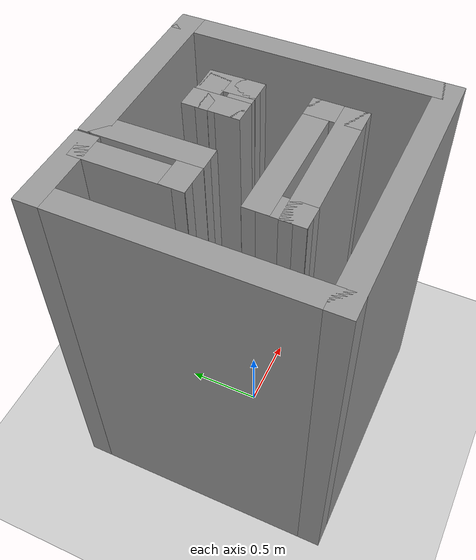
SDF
<?xml version="1.0" ?>

<sdf version="1.5">
  <world name="default">
    <!-- A global light source -->
    <include>
      <uri>model://sun</uri>
    </include>

    <!-- A ground plane -->
    <include>
      <uri>model://ground_plane</uri>
    </include>

    <!-- Our custom model -->
    <include>
      <uri>model://campus_1</uri>
    </include>
  </world>
</sdf>

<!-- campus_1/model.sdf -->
<sdf version='1.6'>
  <model name='campus_1'>
    <pose frame=''>0.012444 0.006742 0 0 -0 0</pose>
    <link name='Wall_11'>
      <collision name='Wall_11_Collision'>
        <geometry>
          <box>
            <size>0.672566 0.15 2.5</size>
          </box>
        </geometry>
        <pose frame=''>0 0 1.25 0 -0 0</pose>
      </collision>
      <visual name='Wall_11_Visual'>
        <pose frame=''>0 0 1.25 0 -0 0</pose>
        <geometry>
          <box>
            <size>0.672566 0.15 2.5</size>
          </box>
        </geometry>
        <material>
          <script>
            <uri>file://media/materials/scripts/gazebo.material</uri>
            <name>Gazebo/Grey</name>
          </script>
          <ambient>1 1 1 1</ambient>
        </material>
        <meta>
          <layer>0</layer>
        </meta>
      </visual>
      <pose frame=''>-0.420109 0.474542 0 0 -0 -1.5636</pose>
    </link>
    <link name='Wall_12'>
      <collision name='Wall_12_Collision'>
        <geometry>
          <box>
            <size>0.341765 0.15 2.5</size>
          </box>
        </geometry>
        <pose frame=''>0 0 1.25 0 -0 0</pose>
      </collision>
      <visual name='Wall_12_Visual'>
        <pose frame=''>0 0 1.25 0 -0 0</pose>
        <geometry>
          <box>
            <size>0.341765 0.15 2.5</size>
          </box>
        </geometry>
        <material>
          <script>
            <uri>file://media/materials/scripts/gazebo.material</uri>
            <name>Gazebo/Grey</name>
          </script>
          <ambient>1 1 1 1</ambient>
        </material>
        <meta>
          <layer>0</layer>
        </meta>
      </visual>
      <pose frame=''>-0.322365 0.211386 0 0 -0 -0.019605</pose>
    </link>
    <link name='Wall_13'>
      <collision name='Wall_13_Collision'>
        <geometry>
          <box>
            <size>0.732702 0.15 2.5</size>
          </box>
        </geometry>
        <pose frame=''>0 0 1.25 0 -0 0</pose>
      </collision>
      <visual name='Wall_13_Visual'>
        <pose frame=''>0 0 1.25 0 -0 0</pose>
        <geometry>
          <box>
            <size>0.732702 0.15 2.5</size>
          </box>
        </geometry>
        <material>
          <script>
            <uri>file://media/materials/scripts/gazebo.material</uri>
            <name>Gazebo/Grey</name>
          </script>
          <ambient>1 1 1 1</ambient>
        </material>
        <meta>
          <layer>0</layer>
        </meta>
      </visual>
      <pose frame=''>-0.228381 0.500857 0 0 -0 1.57725</pose>
    </link>
    <link name='Wall_14'>
      <collision name='Wall_14_Collision'>
        <geometry>
          <box>
            <size>1.18009 0.15 2.5</size>
          </box>
        </geometry>
        <pose frame=''>0 0 1.25 0 -0 0</pose>
      </collision>
      <visual name='Wall_14_Visual'>
        <pose frame=''>0 0 1.25 0 -0 0</pose>
        <geometry>
          <box>
            <size>1.18009 0.15 2.5</size>
          </box>
        </geometry>
        <material>
          <script>
            <uri>file://media/materials/scripts/gazebo.material</uri>
            <name>Gazebo/Grey</name>
          </script>
          <ambient>1 1 1 1</ambient>
        </material>
        <meta>
          <layer>0</layer>
        </meta>
      </visual>
      <pose frame=''>0.284773 0.795968 0 0 -0 0.007299</pose>
    </link>
    <link name='Wall_15'>
      <collision name='Wall_15_Collision'>
        <geometry>
          <box>
            <size>1.75 0.15 2.5</size>
          </box>
        </geometry>
        <pose frame=''>0 0 1.25 0 -0 0</pose>
      </collision>
      <visual name='Wall_15_Visual'>
        <pose frame=''>0 0 1.25 0 -0 0</pose>
        <geometry>
          <box>
            <size>1.75 0.15 2.5</size>
          </box>
        </geometry>
        <material>
          <script>
            <uri>file://media/materials/scripts/gazebo.material</uri>
            <name>Gazebo/Grey</name>
          </script>
          <ambient>1 1 1 1</ambient>
        </material>
        <meta>
          <layer>0</layer>
        </meta>
      </visual>
      <pose frame=''>0.799807 -0.000273 0 0 -0 -1.5708</pose>
    </link>
    <link name='Wall_16'>
      <collision name='Wall_16_Collision'>
        <geometry>
          <box>
            <size>1.75 0.15 2.5</size>
          </box>
        </geometry>
        <pose frame=''>0 0 1.25 0 -0 0</pose>
      </collision>
      <visual name='Wall_16_Visual'>
        <pose frame=''>0 0 1.25 0 -0 0</pose>
        <geometry>
          <box>
            <size>1.75 0.15 2.5</size>
          </box>
        </geometry>
        <material>
          <script>
            <uri>file://media/materials/scripts/gazebo.material</uri>
            <name>Gazebo/Grey</name>
          </script>
          <ambient>1 1 1 1</ambient>
        </material>
        <meta>
          <layer>0</layer>
        </meta>
      </visual>
      <pose frame=''>-0.000193 -0.800273 0 0 -0 3.14159</pose>
    </link>
    <link name='Wall_17'>
      <collision name='Wall_17_Collision'>
        <geometry>
          <box>
            <size>1.75 0.15 2.5</size>
          </box>
        </geometry>
        <pose frame=''>0 0 1.25 0 -0 0</pose>
      </collision>
      <visual name='Wall_17_Visual'>
        <pose frame=''>0 0 1.25 0 -0 0</pose>
        <geometry>
          <box>
            <size>1.75 0.15 2.5</size>
          </box>
        </geometry>
        <material>
          <script>
            <uri>file://media/materials/scripts/gazebo.material</uri>
            <name>Gazebo/Grey</name>
          </script>
          <ambient>1 1 1 1</ambient>
        </material>
        <meta>
          <layer>0</layer>
        </meta>
      </visual>
      <pose frame=''>-0.800193 -0.000273 0 0 -0 1.5708</pose>
    </link>
    <link name='Wall_18'>
      <collision name='Wall_18_Collision'>
        <geometry>
          <box>
            <size>0.561383 0.15 2.5</size>
          </box>
        </geometry>
        <pose frame=''>0 0 1.25 0 -0 0</pose>
      </collision>
      <visual name='Wall_18_Visual'>
        <pose frame=''>0 0 1.25 0 -0 0</pose>
        <geometry>
          <box>
            <size>0.561383 0.15 2.5</size>
          </box>
        </geometry>
        <material>
          <script>
            <uri>file://media/materials/scripts/gazebo.material</uri>
            <name>Gazebo/Grey</name>
          </script>
          <ambient>1 1 1 1</ambient>
        </material>
        <meta>
          <layer>0</layer>
        </meta>
      </visual>
      <pose frame=''>-0.594608 0.799872 0 0 -0 0.000704</pose>
    </link>
    <link name='Wall_20'>
      <collision name='Wall_20_Collision'>
        <geometry>
          <box>
            <size>0.348871 0.15 2.5</size>
          </box>
        </geometry>
        <pose frame=''>0 0 1.25 0 -0 0</pose>
      </collision>
      <visual name='Wall_20_Visual'>
        <pose frame=''>0 0 1.25 0 -0 0</pose>
        <geometry>
          <box>
            <size>0.348871 0.15 2.5</size>
          </box>
        </geometry>
        <material>
          <script>
            <uri>file://media/materials/scripts/gazebo.material</uri>
            <name>Gazebo/Grey</name>
          </script>
          <ambient>1 1 1 1</ambient>
        </material>
        <meta>
          <layer>0</layer>
        </meta>
      </visual>
      <pose frame=''>0.185972 0.307163 0 0 -0 -1.5708</pose>
    </link>
    <link name='Wall_21'>
      <collision name='Wall_21_Collision'>
        <geometry>
          <box>
            <size>0.335951 0.15 2.5</size>
          </box>
        </geometry>
        <pose frame=''>0 0 1.25 0 -0 0</pose>
      </collision>
      <visual name='Wall_21_Visual'>
        <pose frame=''>0 0 1.25 0 -0 0</pose>
        <geometry>
          <box>
            <size>0.335951 0.15 2.5</size>
          </box>
        </geometry>
        <material>
          <script>
            <uri>file://media/materials/scripts/gazebo.material</uri>
            <name>Gazebo/Grey</name>
          </script>
          <ambient>1 1 1 1</ambient>
        </material>
        <meta>
          <layer>0</layer>
        </meta>
      </visual>
      <pose frame=''>0.278923 0.207728 0 0 -0 0</pose>
    </link>
    <link name='Wall_22'>
      <collision name='Wall_22_Collision'>
        <geometry>
          <box>
            <size>0.335951 0.15 2.5</size>
          </box>
        </geometry>
        <pose frame=''>0 0 1.25 0 -0 0</pose>
      </collision>
      <visual name='Wall_22_Visual'>
        <pose frame=''>0 0 1.25 0 -0 0</pose>
        <geometry>
          <box>
            <size>0.335951 0.15 2.5</size>
          </box>
        </geometry>
        <material>
          <script>
            <uri>file://media/materials/scripts/gazebo.material</uri>
            <name>Gazebo/Grey</name>
          </script>
          <ambient>1 1 1 1</ambient>
        </material>
        <meta>
          <layer>0</layer>
        </meta>
      </visual>
      <pose frame=''>0.369711 0.300678 0 0 -0 1.59405</pose>
    </link>
    <link name='Wall_23'>
      <collision name='Wall_23_Collision'>
        <geometry>
          <box>
            <size>0.331629 0.15 2.5</size>
          </box>
        </geometry>
        <pose frame=''>0 0 1.25 0 -0 0</pose>
      </collision>
      <visual name='Wall_23_Visual'>
        <pose frame=''>0 0 1.25 0 -0 0</pose>
        <geometry>
          <box>
            <size>0.331629 0.15 2.5</size>
          </box>
        </geometry>
        <material>
          <script>
            <uri>file://media/materials/scripts/gazebo.material</uri>
            <name>Gazebo/Grey</name>
          </script>
          <ambient>1 1 1 1</ambient>
        </material>
        <meta>
          <layer>0</layer>
        </meta>
      </visual>
      <pose frame=''>0.276761 0.39579 0 0 -0 3.11779</pose>
    </link>
    <link name='Wall_6'>
      <collision name='Wall_6_Collision'>
        <geometry>
          <box>
            <size>0.917593 0.15 2.5</size>
          </box>
        </geometry>
        <pose frame=''>0 0 1.25 0 -0 0</pose>
      </collision>
      <visual name='Wall_6_Visual'>
        <pose frame=''>0 0 1.25 0 -0 0</pose>
        <geometry>
          <box>
            <size>0.917593 0.15 2.5</size>
          </box>
        </geometry>
        <material>
          <script>
            <uri>file://media/materials/scripts/gazebo.material</uri>
            <name>Gazebo/Grey</name>
          </script>
          <ambient>1 1 1 1</ambient>
        </material>
        <meta>
          <layer>0</layer>
        </meta>
      </visual>
      <pose frame=''>-0.008373 -0.408243 0 0 -0 0.014814</pose>
    </link>
    <link name='Wall_7'>
      <collision name='Wall_7_Collision'>
        <geometry>
          <box>
            <size>0.331928 0.15 2.5</size>
          </box>
        </geometry>
        <pose frame=''>0 0 1.25 0 -0 0</pose>
      </collision>
      <visual name='Wall_7_Visual'>
        <pose frame=''>0 0 1.25 0 -0 0</pose>
        <geometry>
          <box>
            <size>0.331928 0.15 2.5</size>
          </box>
        </geometry>
        <material>
          <script>
            <uri>file://media/materials/scripts/gazebo.material</uri>
            <name>Gazebo/Grey</name>
          </script>
          <ambient>1 1 1 1</ambient>
        </material>
        <meta>
          <layer>0</layer>
        </meta>
      </visual>
      <pose frame=''>0.375381 -0.311594 0 0 -0 1.5708</pose>
    </link>
    <link name='Wall_8'>
      <collision name='Wall_8_Collision'>
        <geometry>
          <box>
            <size>0.914666 0.15 2.5</size>
          </box>
        </geometry>
        <pose frame=''>0 0 1.25 0 -0 0</pose>
      </collision>
      <visual name='Wall_8_Visual'>
        <pose frame=''>0 0 1.25 0 -0 0</pose>
        <geometry>
          <box>
            <size>0.914666 0.15 2.5</size>
          </box>
        </geometry>
        <material>
          <script>
            <uri>file://media/materials/scripts/gazebo.material</uri>
            <name>Gazebo/Grey</name>
          </script>
          <ambient>1 1 1 1</ambient>
        </material>
        <meta>
          <layer>0</layer>
        </meta>
      </visual>
      <pose frame=''>-0.006952 -0.22063 0 0 -0 3.14159</pose>
    </link>
    <link name='Wall_9'>
      <collision name='Wall_9_Collision'>
        <geometry>
          <box>
            <size>0.343319 0.15 2.5</size>
          </box>
        </geometry>
        <pose frame=''>0 0 1.25 0 -0 0</pose>
      </collision>
      <visual name='Wall_9_Visual'>
        <pose frame=''>0 0 1.25 0 -0 0</pose>
        <geometry>
          <box>
            <size>0.343319 0.15 2.5</size>
          </box>
        </geometry>
        <material>
          <script>
            <uri>file://media/materials/scripts/gazebo.material</uri>
            <name>Gazebo/Grey</name>
          </script>
          <ambient>1 1 1 1</ambient>
        </material>
        <meta>
          <layer>0</layer>
        </meta>
      </visual>
      <pose frame=''>-0.390706 -0.317279 0 0 -0 -1.5855</pose>
    </link>
    <static>1</static>
  </model>
</sdf>
